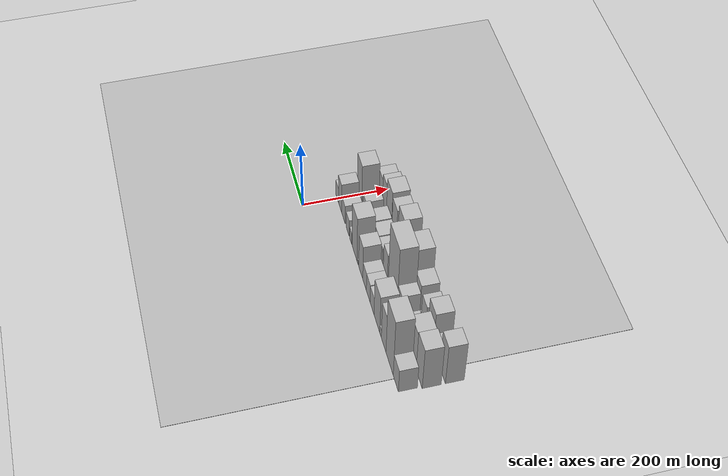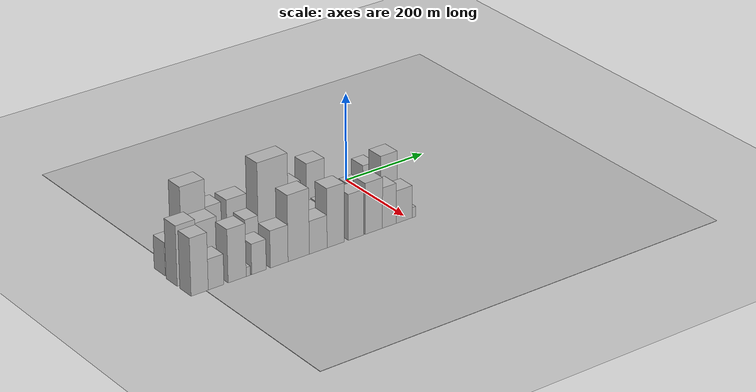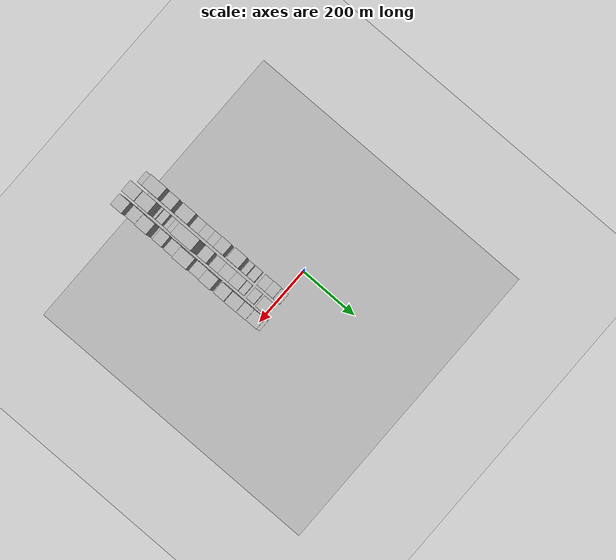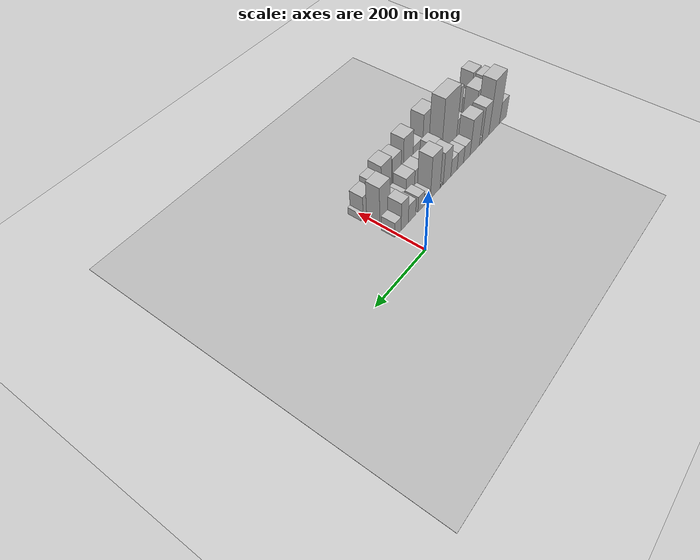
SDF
<sdf version="1.6">
 <world name="default">
  <include><name>ground_plane_1</name><uri>model://HANNAS_ground_plane</uri></include>
  <include>
   <name>ground_plane_2</name>
   <uri>model://HANNAS_ground_plane</uri>
   <pose>100 0 0  0 0 0</pose>
  </include>
  <model name="building_1">
   <static>1</static>
   <pose>100.0000 -512.0443 0 0.000000 0.000000 0.000000</pose>
   <link name="link">
    <pose>0 0 37.50 0 0 0</pose>
    <collision name="collision"><geometry><box><size>40.0000 39.9115 75.0000</size></box></geometry></collision>
    <visual name="visual">
     <cast_shadows>0</cast_shadows>
     <geometry><box><size>40.0000 39.9115 75.0000</size></box></geometry>
     <material>
      <script>
       <uri>model://HANNAS_wall/materials/scripts</uri>
       <uri>model://HANNAS_wall/materials/textures</uri>
       <name>vrc/HANNAS_wall</name>
      </script>
     </material>
    </visual>
   </link>
  </model>
  <model name="building_2">
   <static>1</static>
   <pose>100.0000 -462.9646 0 0.000000 0.000000 0.000000</pose>
   <link name="link">
    <pose>0 0 93.00 0 0 0</pose>
    <collision name="collision"><geometry><box><size>40.0000 58.2478 186.0000</size></box></geometry></collision>
    <visual name="visual">
     <cast_shadows>0</cast_shadows>
     <geometry><box><size>40.0000 58.2478 186.0000</size></box></geometry>
     <material>
      <script>
       <uri>model://HANNAS_wall/materials/scripts</uri>
       <uri>model://HANNAS_wall/materials/textures</uri>
       <name>vrc/HANNAS_wall</name>
      </script>
     </material>
    </visual>
   </link>
  </model>
  <model name="building_3">
   <static>1</static>
   <pose>100.0000 -414.9623 0 0.000000 0.000000 0.000000</pose>
   <link name="link">
    <pose>0 0 61.50 0 0 0</pose>
    <collision name="collision"><geometry><box><size>40.0000 37.7568 123.0000</size></box></geometry></collision>
    <visual name="visual">
     <cast_shadows>0</cast_shadows>
     <geometry><box><size>40.0000 37.7568 123.0000</size></box></geometry>
     <material>
      <script>
       <uri>model://HANNAS_wall/materials/scripts</uri>
       <uri>model://HANNAS_wall/materials/textures</uri>
       <name>vrc/HANNAS_wall</name>
      </script>
     </material>
    </visual>
   </link>
  </model>
  <model name="building_4">
   <static>1</static>
   <pose>100.0000 -389.6329 0 0.000000 0.000000 0.000000</pose>
   <link name="link">
    <pose>0 0 13.50 0 0 0</pose>
    <collision name="collision"><geometry><box><size>40.0000 12.9021 27.0000</size></box></geometry></collision>
    <visual name="visual">
     <cast_shadows>0</cast_shadows>
     <geometry><box><size>40.0000 12.9021 27.0000</size></box></geometry>
     <material>
      <script>
       <uri>model://HANNAS_wall/materials/scripts</uri>
       <uri>model://HANNAS_wall/materials/textures</uri>
       <name>vrc/HANNAS_wall</name>
      </script>
     </material>
    </visual>
   </link>
  </model>
  <model name="building_5">
   <static>1</static>
   <pose>100.0000 -359.2586 0 0.000000 0.000000 0.000000</pose>
   <link name="link">
    <pose>0 0 61.50 0 0 0</pose>
    <collision name="collision"><geometry><box><size>40.0000 47.8465 123.0000</size></box></geometry></collision>
    <visual name="visual">
     <cast_shadows>0</cast_shadows>
     <geometry><box><size>40.0000 47.8465 123.0000</size></box></geometry>
     <material>
      <script>
       <uri>model://HANNAS_wall/materials/scripts</uri>
       <uri>model://HANNAS_wall/materials/textures</uri>
       <name>vrc/HANNAS_wall</name>
      </script>
     </material>
    </visual>
   </link>
  </model>
  <model name="building_6">
   <static>1</static>
   <pose>100.0000 -318.5789 0 0.000000 0.000000 0.000000</pose>
   <link name="link">
    <pose>0 0 28.50 0 0 0</pose>
    <collision name="collision"><geometry><box><size>40.0000 33.5130 57.0000</size></box></geometry></collision>
    <visual name="visual">
     <cast_shadows>0</cast_shadows>
     <geometry><box><size>40.0000 33.5130 57.0000</size></box></geometry>
     <material>
      <script>
       <uri>model://HANNAS_wall/materials/scripts</uri>
       <uri>model://HANNAS_wall/materials/textures</uri>
       <name>vrc/HANNAS_wall</name>
      </script>
     </material>
    </visual>
   </link>
  </model>
  <model name="building_7">
   <static>1</static>
   <pose>100.0000 -285.7807 0 0.000000 0.000000 0.000000</pose>
   <link name="link">
    <pose>0 0 30.00 0 0 0</pose>
    <collision name="collision"><geometry><box><size>40.0000 32.0833 60.0000</size></box></geometry></collision>
    <visual name="visual">
     <cast_shadows>0</cast_shadows>
     <geometry><box><size>40.0000 32.0833 60.0000</size></box></geometry>
     <material>
      <script>
       <uri>model://HANNAS_wall/materials/scripts</uri>
       <uri>model://HANNAS_wall/materials/textures</uri>
       <name>vrc/HANNAS_wall</name>
      </script>
     </material>
    </visual>
   </link>
  </model>
  <model name="building_8">
   <static>1</static>
   <pose>100.0000 -254.2660 0 0.000000 0.000000 0.000000</pose>
   <link name="link">
    <pose>0 0 30.00 0 0 0</pose>
    <collision name="collision"><geometry><box><size>40.0000 30.9462 60.0000</size></box></geometry></collision>
    <visual name="visual">
     <cast_shadows>0</cast_shadows>
     <geometry><box><size>40.0000 30.9462 60.0000</size></box></geometry>
     <material>
      <script>
       <uri>model://HANNAS_wall/materials/scripts</uri>
       <uri>model://HANNAS_wall/materials/textures</uri>
       <name>vrc/HANNAS_wall</name>
      </script>
     </material>
    </visual>
   </link>
  </model>
  <model name="building_9">
   <static>1</static>
   <pose>100.0000 -220.7364 0 0.000000 0.000000 0.000000</pose>
   <link name="link">
    <pose>0 0 55.50 0 0 0</pose>
    <collision name="collision"><geometry><box><size>40.0000 36.1131 111.0000</size></box></geometry></collision>
    <visual name="visual">
     <cast_shadows>0</cast_shadows>
     <geometry><box><size>40.0000 36.1131 111.0000</size></box></geometry>
     <material>
      <script>
       <uri>model://HANNAS_wall/materials/scripts</uri>
       <uri>model://HANNAS_wall/materials/textures</uri>
       <name>vrc/HANNAS_wall</name>
      </script>
     </material>
    </visual>
   </link>
  </model>
  <model name="building_10">
   <static>1</static>
   <pose>100.0000 -194.1090 0 0.000000 0.000000 0.000000</pose>
   <link name="link">
    <pose>0 0 7.50 0 0 0</pose>
    <collision name="collision"><geometry><box><size>40.0000 7.1417 15.0000</size></box></geometry></collision>
    <visual name="visual">
     <cast_shadows>0</cast_shadows>
     <geometry><box><size>40.0000 7.1417 15.0000</size></box></geometry>
     <material>
      <script>
       <uri>model://HANNAS_wall/materials/scripts</uri>
       <uri>model://HANNAS_wall/materials/textures</uri>
       <name>vrc/HANNAS_wall</name>
      </script>
     </material>
    </visual>
   </link>
  </model>
  <model name="building_11">
   <static>1</static>
   <pose>100.0000 -165.2680 0 0.000000 0.000000 0.000000</pose>
   <link name="link">
    <pose>0 0 72.00 0 0 0</pose>
    <collision name="collision"><geometry><box><size>40.0000 44.5402 144.0000</size></box></geometry></collision>
    <visual name="visual">
     <cast_shadows>0</cast_shadows>
     <geometry><box><size>40.0000 44.5402 144.0000</size></box></geometry>
     <material>
      <script>
       <uri>model://HANNAS_wall/materials/scripts</uri>
       <uri>model://HANNAS_wall/materials/textures</uri>
       <name>vrc/HANNAS_wall</name>
      </script>
     </material>
    </visual>
   </link>
  </model>
  <model name="building_12">
   <static>1</static>
   <pose>100.0000 -128.9240 0 0.000000 0.000000 0.000000</pose>
   <link name="link">
    <pose>0 0 19.50 0 0 0</pose>
    <collision name="collision"><geometry><box><size>40.0000 20.1479 39.0000</size></box></geometry></collision>
    <visual name="visual">
     <cast_shadows>0</cast_shadows>
     <geometry><box><size>40.0000 20.1479 39.0000</size></box></geometry>
     <material>
      <script>
       <uri>model://HANNAS_wall/materials/scripts</uri>
       <uri>model://HANNAS_wall/materials/textures</uri>
       <name>vrc/HANNAS_wall</name>
      </script>
     </material>
    </visual>
   </link>
  </model>
  <model name="building_13">
   <static>1</static>
   <pose>100.0000 -101.1259 0 0.000000 0.000000 0.000000</pose>
   <link name="link">
    <pose>0 0 27.00 0 0 0</pose>
    <collision name="collision"><geometry><box><size>40.0000 27.4483 54.0000</size></box></geometry></collision>
    <visual name="visual">
     <cast_shadows>0</cast_shadows>
     <geometry><box><size>40.0000 27.4483 54.0000</size></box></geometry>
     <material>
      <script>
       <uri>model://HANNAS_wall/materials/scripts</uri>
       <uri>model://HANNAS_wall/materials/textures</uri>
       <name>vrc/HANNAS_wall</name>
      </script>
     </material>
    </visual>
   </link>
  </model>
  <model name="building_14">
   <static>1</static>
   <pose>100.0000 -61.3096 0 0.000000 0.000000 0.000000</pose>
   <link name="link">
    <pose>0 0 30.00 0 0 0</pose>
    <collision name="collision"><geometry><box><size>40.0000 32.1842 60.0000</size></box></geometry></collision>
    <visual name="visual">
     <cast_shadows>0</cast_shadows>
     <geometry><box><size>40.0000 32.1842 60.0000</size></box></geometry>
     <material>
      <script>
       <uri>model://HANNAS_wall/materials/scripts</uri>
       <uri>model://HANNAS_wall/materials/textures</uri>
       <name>vrc/HANNAS_wall</name>
      </script>
     </material>
    </visual>
   </link>
  </model>
  <model name="building_15">
   <static>1</static>
   <pose>100.0000 -29.9201 0 0.000000 0.000000 0.000000</pose>
   <link name="link">
    <pose>0 0 48.00 0 0 0</pose>
    <collision name="collision"><geometry><box><size>40.0000 30.5947 96.0000</size></box></geometry></collision>
    <visual name="visual">
     <cast_shadows>0</cast_shadows>
     <geometry><box><size>40.0000 30.5947 96.0000</size></box></geometry>
     <material>
      <script>
       <uri>model://HANNAS_wall/materials/scripts</uri>
       <uri>model://HANNAS_wall/materials/textures</uri>
       <name>vrc/HANNAS_wall</name>
      </script>
     </material>
    </visual>
   </link>
  </model>
  <model name="building_16">
   <static>1</static>
   <pose>100.0000 -1.5461 0 0.000000 0.000000 0.000000</pose>
   <link name="link">
    <pose>0 0 25.50 0 0 0</pose>
    <collision name="collision"><geometry><box><size>40.0000 26.1533 51.0000</size></box></geometry></collision>
    <visual name="visual">
     <cast_shadows>0</cast_shadows>
     <geometry><box><size>40.0000 26.1533 51.0000</size></box></geometry>
     <material>
      <script>
       <uri>model://HANNAS_wall/materials/scripts</uri>
       <uri>model://HANNAS_wall/materials/textures</uri>
       <name>vrc/HANNAS_wall</name>
      </script>
     </material>
    </visual>
   </link>
  </model>
  <model name="building_33">
   <static>1</static>
   <pose>149.0000 -513.2395 0 0.000000 0.000000 0.000000</pose>
   <link name="link">
    <pose>0 0 67.50 0 0 0</pose>
    <collision name="collision"><geometry><box><size>40.0000 45.5210 135.0000</size></box></geometry></collision>
    <visual name="visual">
     <cast_shadows>0</cast_shadows>
     <geometry><box><size>40.0000 45.5210 135.0000</size></box></geometry>
     <material>
      <script>
       <uri>model://HANNAS_wall/materials/scripts</uri>
       <uri>model://HANNAS_wall/materials/textures</uri>
       <name>vrc/HANNAS_wall</name>
      </script>
     </material>
    </visual>
   </link>
  </model>
  <model name="building_34">
   <static>1</static>
   <pose>149.0000 -465.4376 0 0.000000 0.000000 0.000000</pose>
   <link name="link">
    <pose>0 0 63.00 0 0 0</pose>
    <collision name="collision"><geometry><box><size>40.0000 50.0829 126.0000</size></box></geometry></collision>
    <visual name="visual">
     <cast_shadows>0</cast_shadows>
     <geometry><box><size>40.0000 50.0829 126.0000</size></box></geometry>
     <material>
      <script>
       <uri>model://HANNAS_wall/materials/scripts</uri>
       <uri>model://HANNAS_wall/materials/textures</uri>
       <name>vrc/HANNAS_wall</name>
      </script>
     </material>
    </visual>
   </link>
  </model>
  <model name="building_35">
   <static>1</static>
   <pose>149.0000 -436.0223 0 0.000000 0.000000 0.000000</pose>
   <link name="link">
    <pose>0 0 9.00 0 0 0</pose>
    <collision name="collision"><geometry><box><size>40.0000 8.7476 18.0000</size></box></geometry></collision>
    <visual name="visual">
     <cast_shadows>0</cast_shadows>
     <geometry><box><size>40.0000 8.7476 18.0000</size></box></geometry>
     <material>
      <script>
       <uri>model://HANNAS_wall/materials/scripts</uri>
       <uri>model://HANNAS_wall/materials/textures</uri>
       <name>vrc/HANNAS_wall</name>
      </script>
     </material>
    </visual>
   </link>
  </model>
  <model name="building_36">
   <static>1</static>
   <pose>149.0000 -413.1563 0 0.000000 0.000000 0.000000</pose>
   <link name="link">
    <pose>0 0 22.50 0 0 0</pose>
    <collision name="collision"><geometry><box><size>40.0000 22.9843 45.0000</size></box></geometry></collision>
    <visual name="visual">
     <cast_shadows>0</cast_shadows>
     <geometry><box><size>40.0000 22.9843 45.0000</size></box></geometry>
     <material>
      <script>
       <uri>model://HANNAS_wall/materials/scripts</uri>
       <uri>model://HANNAS_wall/materials/textures</uri>
       <name>vrc/HANNAS_wall</name>
      </script>
     </material>
    </visual>
   </link>
  </model>
  <model name="building_37">
   <static>1</static>
   <pose>149.0000 -384.3361 0 0.000000 0.000000 0.000000</pose>
   <link name="link">
    <pose>0 0 19.50 0 0 0</pose>
    <collision name="collision"><geometry><box><size>40.0000 22.6561 39.0000</size></box></geometry></collision>
    <visual name="visual">
     <cast_shadows>0</cast_shadows>
     <geometry><box><size>40.0000 22.6561 39.0000</size></box></geometry>
     <material>
      <script>
       <uri>model://HANNAS_wall/materials/scripts</uri>
       <uri>model://HANNAS_wall/materials/textures</uri>
       <name>vrc/HANNAS_wall</name>
      </script>
     </material>
    </visual>
   </link>
  </model>
  <model name="building_38">
   <static>1</static>
   <pose>149.0000 -357.0428 0 0.000000 0.000000 0.000000</pose>
   <link name="link">
    <pose>0 0 48.00 0 0 0</pose>
    <collision name="collision"><geometry><box><size>40.0000 31.9304 96.0000</size></box></geometry></collision>
    <visual name="visual">
     <cast_shadows>0</cast_shadows>
     <geometry><box><size>40.0000 31.9304 96.0000</size></box></geometry>
     <material>
      <script>
       <uri>model://HANNAS_wall/materials/scripts</uri>
       <uri>model://HANNAS_wall/materials/textures</uri>
       <name>vrc/HANNAS_wall</name>
      </script>
     </material>
    </visual>
   </link>
  </model>
  <model name="building_39">
   <static>1</static>
   <pose>149.0000 -304.5388 0 0.000000 0.000000 0.000000</pose>
   <link name="link">
    <pose>0 0 106.50 0 0 0</pose>
    <collision name="collision"><geometry><box><size>40.0000 73.0776 213.0000</size></box></geometry></collision>
    <visual name="visual">
     <cast_shadows>0</cast_shadows>
     <geometry><box><size>40.0000 73.0776 213.0000</size></box></geometry>
     <material>
      <script>
       <uri>model://HANNAS_wall/materials/scripts</uri>
       <uri>model://HANNAS_wall/materials/textures</uri>
       <name>vrc/HANNAS_wall</name>
      </script>
     </material>
    </visual>
   </link>
  </model>
  <model name="building_40">
   <static>1</static>
   <pose>149.0000 -242.8486 0 0.000000 0.000000 0.000000</pose>
   <link name="link">
    <pose>0 0 46.50 0 0 0</pose>
    <collision name="collision"><geometry><box><size>40.0000 34.3028 93.0000</size></box></geometry></collision>
    <visual name="visual">
     <cast_shadows>0</cast_shadows>
     <geometry><box><size>40.0000 34.3028 93.0000</size></box></geometry>
     <material>
      <script>
       <uri>model://HANNAS_wall/materials/scripts</uri>
       <uri>model://HANNAS_wall/materials/textures</uri>
       <name>vrc/HANNAS_wall</name>
      </script>
     </material>
    </visual>
   </link>
  </model>
  <model name="building_41">
   <static>1</static>
   <pose>149.0000 -200.7649 0 0.000000 0.000000 0.000000</pose>
   <link name="link">
    <pose>0 0 33.00 0 0 0</pose>
    <collision name="collision"><geometry><box><size>40.0000 33.8648 66.0000</size></box></geometry></collision>
    <visual name="visual">
     <cast_shadows>0</cast_shadows>
     <geometry><box><size>40.0000 33.8648 66.0000</size></box></geometry>
     <material>
      <script>
       <uri>model://HANNAS_wall/materials/scripts</uri>
       <uri>model://HANNAS_wall/materials/textures</uri>
       <name>vrc/HANNAS_wall</name>
      </script>
     </material>
    </visual>
   </link>
  </model>
  <model name="building_42">
   <static>1</static>
   <pose>149.0000 -163.7978 0 0.000000 0.000000 0.000000</pose>
   <link name="link">
    <pose>0 0 34.50 0 0 0</pose>
    <collision name="collision"><geometry><box><size>40.0000 40.0694 69.0000</size></box></geometry></collision>
    <visual name="visual">
     <cast_shadows>0</cast_shadows>
     <geometry><box><size>40.0000 40.0694 69.0000</size></box></geometry>
     <material>
      <script>
       <uri>model://HANNAS_wall/materials/scripts</uri>
       <uri>model://HANNAS_wall/materials/textures</uri>
       <name>vrc/HANNAS_wall</name>
      </script>
     </material>
    </visual>
   </link>
  </model>
  <model name="building_43">
   <static>1</static>
   <pose>149.0000 -125.0064 0 0.000000 0.000000 0.000000</pose>
   <link name="link">
    <pose>0 0 36.00 0 0 0</pose>
    <collision name="collision"><geometry><box><size>40.0000 37.5133 72.0000</size></box></geometry></collision>
    <visual name="visual">
     <cast_shadows>0</cast_shadows>
     <geometry><box><size>40.0000 37.5133 72.0000</size></box></geometry>
     <material>
      <script>
       <uri>model://HANNAS_wall/materials/scripts</uri>
       <uri>model://HANNAS_wall/materials/textures</uri>
       <name>vrc/HANNAS_wall</name>
      </script>
     </material>
    </visual>
   </link>
  </model>
  <model name="building_44">
   <static>1</static>
   <pose>149.0000 -95.7182 0 0.000000 0.000000 0.000000</pose>
   <link name="link">
    <pose>0 0 18.00 0 0 0</pose>
    <collision name="collision"><geometry><box><size>40.0000 21.0632 36.0000</size></box></geometry></collision>
    <visual name="visual">
     <cast_shadows>0</cast_shadows>
     <geometry><box><size>40.0000 21.0632 36.0000</size></box></geometry>
     <material>
      <script>
       <uri>model://HANNAS_wall/materials/scripts</uri>
       <uri>model://HANNAS_wall/materials/textures</uri>
       <name>vrc/HANNAS_wall</name>
      </script>
     </material>
    </visual>
   </link>
  </model>
  <model name="building_45">
   <static>1</static>
   <pose>149.0000 -60.5507 0 0.000000 0.000000 0.000000</pose>
   <link name="link">
    <pose>0 0 28.50 0 0 0</pose>
    <collision name="collision"><geometry><box><size>40.0000 29.2717 57.0000</size></box></geometry></collision>
    <visual name="visual">
     <cast_shadows>0</cast_shadows>
     <geometry><box><size>40.0000 29.2717 57.0000</size></box></geometry>
     <material>
      <script>
       <uri>model://HANNAS_wall/materials/scripts</uri>
       <uri>model://HANNAS_wall/materials/textures</uri>
       <name>vrc/HANNAS_wall</name>
      </script>
     </material>
    </visual>
   </link>
  </model>
  <model name="building_46">
   <static>1</static>
   <pose>149.0000 -15.8143 0 0.000000 0.000000 0.000000</pose>
   <link name="link">
    <pose>0 0 67.50 0 0 0</pose>
    <collision name="collision"><geometry><box><size>40.0000 42.2011 135.0000</size></box></geometry></collision>
    <visual name="visual">
     <cast_shadows>0</cast_shadows>
     <geometry><box><size>40.0000 42.2011 135.0000</size></box></geometry>
     <material>
      <script>
       <uri>model://HANNAS_wall/materials/scripts</uri>
       <uri>model://HANNAS_wall/materials/textures</uri>
       <name>vrc/HANNAS_wall</name>
      </script>
     </material>
    </visual>
   </link>
  </model>
  <model name="building_62">
   <static>1</static>
   <pose>198.0000 -515.7371 0 0.000000 0.000000 0.000000</pose>
   <link name="link">
    <pose>0 0 64.50 0 0 0</pose>
    <collision name="collision"><geometry><box><size>40.0000 40.5257 129.0000</size></box></geometry></collision>
    <visual name="visual">
     <cast_shadows>0</cast_shadows>
     <geometry><box><size>40.0000 40.5257 129.0000</size></box></geometry>
     <material>
      <script>
       <uri>model://HANNAS_wall/materials/scripts</uri>
       <uri>model://HANNAS_wall/materials/textures</uri>
       <name>vrc/HANNAS_wall</name>
      </script>
     </material>
    </visual>
   </link>
  </model>
  <model name="building_63">
   <static>1</static>
   <pose>198.0000 -476.8887 0 0.000000 0.000000 0.000000</pose>
   <link name="link">
    <pose>0 0 34.50 0 0 0</pose>
    <collision name="collision"><geometry><box><size>40.0000 37.1712 69.0000</size></box></geometry></collision>
    <visual name="visual">
     <cast_shadows>0</cast_shadows>
     <geometry><box><size>40.0000 37.1712 69.0000</size></box></geometry>
     <material>
      <script>
       <uri>model://HANNAS_wall/materials/scripts</uri>
       <uri>model://HANNAS_wall/materials/textures</uri>
       <name>vrc/HANNAS_wall</name>
      </script>
     </material>
    </visual>
   </link>
  </model>
  <model name="building_64">
   <static>1</static>
   <pose>198.0000 -426.7132 0 0.000000 0.000000 0.000000</pose>
   <link name="link">
    <pose>0 0 60.00 0 0 0</pose>
    <collision name="collision"><geometry><box><size>40.0000 43.1799 120.0000</size></box></geometry></collision>
    <visual name="visual">
     <cast_shadows>0</cast_shadows>
     <geometry><box><size>40.0000 43.1799 120.0000</size></box></geometry>
     <material>
      <script>
       <uri>model://HANNAS_wall/materials/scripts</uri>
       <uri>model://HANNAS_wall/materials/textures</uri>
       <name>vrc/HANNAS_wall</name>
      </script>
     </material>
    </visual>
   </link>
  </model>
  <model name="building_65">
   <static>1</static>
   <pose>198.0000 -400.0212 0 0.000000 0.000000 0.000000</pose>
   <link name="link">
    <pose>0 0 10.50 0 0 0</pose>
    <collision name="collision"><geometry><box><size>40.0000 10.2041 21.0000</size></box></geometry></collision>
    <visual name="visual">
     <cast_shadows>0</cast_shadows>
     <geometry><box><size>40.0000 10.2041 21.0000</size></box></geometry>
     <material>
      <script>
       <uri>model://HANNAS_wall/materials/scripts</uri>
       <uri>model://HANNAS_wall/materials/textures</uri>
       <name>vrc/HANNAS_wall</name>
      </script>
     </material>
    </visual>
   </link>
  </model>
  <model name="building_66">
   <static>1</static>
   <pose>198.0000 -374.3731 0 0.000000 0.000000 0.000000</pose>
   <link name="link">
    <pose>0 0 34.50 0 0 0</pose>
    <collision name="collision"><geometry><box><size>40.0000 35.0922 69.0000</size></box></geometry></collision>
    <visual name="visual">
     <cast_shadows>0</cast_shadows>
     <geometry><box><size>40.0000 35.0922 69.0000</size></box></geometry>
     <material>
      <script>
       <uri>model://HANNAS_wall/materials/scripts</uri>
       <uri>model://HANNAS_wall/materials/textures</uri>
       <name>vrc/HANNAS_wall</name>
      </script>
     </material>
    </visual>
   </link>
  </model>
  <model name="building_67">
   <static>1</static>
   <pose>198.0000 -325.3395 0 0.000000 0.000000 0.000000</pose>
   <link name="link">
    <pose>0 0 42.00 0 0 0</pose>
    <collision name="collision"><geometry><box><size>40.0000 42.9750 84.0000</size></box></geometry></collision>
    <visual name="visual">
     <cast_shadows>0</cast_shadows>
     <geometry><box><size>40.0000 42.9750 84.0000</size></box></geometry>
     <material>
      <script>
       <uri>model://HANNAS_wall/materials/scripts</uri>
       <uri>model://HANNAS_wall/materials/textures</uri>
       <name>vrc/HANNAS_wall</name>
      </script>
     </material>
    </visual>
   </link>
  </model>
  <model name="building_68">
   <static>1</static>
   <pose>198.0000 -277.7377 0 0.000000 0.000000 0.000000</pose>
   <link name="link">
    <pose>0 0 75.00 0 0 0</pose>
    <collision name="collision"><geometry><box><size>40.0000 52.2286 150.0000</size></box></geometry></collision>
    <visual name="visual">
     <cast_shadows>0</cast_shadows>
     <geometry><box><size>40.0000 52.2286 150.0000</size></box></geometry>
     <material>
      <script>
       <uri>model://HANNAS_wall/materials/scripts</uri>
       <uri>model://HANNAS_wall/materials/textures</uri>
       <name>vrc/HANNAS_wall</name>
      </script>
     </material>
    </visual>
   </link>
  </model>
  <model name="building_69">
   <static>1</static>
   <pose>198.0000 -229.6370 0 0.000000 0.000000 0.000000</pose>
   <link name="link">
    <pose>0 0 37.50 0 0 0</pose>
    <collision name="collision"><geometry><box><size>40.0000 43.9727 75.0000</size></box></geometry></collision>
    <visual name="visual">
     <cast_shadows>0</cast_shadows>
     <geometry><box><size>40.0000 43.9727 75.0000</size></box></geometry>
     <material>
      <script>
       <uri>model://HANNAS_wall/materials/scripts</uri>
       <uri>model://HANNAS_wall/materials/textures</uri>
       <name>vrc/HANNAS_wall</name>
      </script>
     </material>
    </visual>
   </link>
  </model>
  <model name="building_70">
   <static>1</static>
   <pose>198.0000 -186.1103 0 0.000000 0.000000 0.000000</pose>
   <link name="link">
    <pose>0 0 67.50 0 0 0</pose>
    <collision name="collision"><geometry><box><size>40.0000 43.0807 135.0000</size></box></geometry></collision>
    <visual name="visual">
     <cast_shadows>0</cast_shadows>
     <geometry><box><size>40.0000 43.0807 135.0000</size></box></geometry>
     <material>
      <script>
       <uri>model://HANNAS_wall/materials/scripts</uri>
       <uri>model://HANNAS_wall/materials/textures</uri>
       <name>vrc/HANNAS_wall</name>
      </script>
     </material>
    </visual>
   </link>
  </model>
  <model name="building_71">
   <static>1</static>
   <pose>198.0000 -135.0684 0 0.000000 0.000000 0.000000</pose>
   <link name="link">
    <pose>0 0 52.50 0 0 0</pose>
    <collision name="collision"><geometry><box><size>40.0000 39.0031 105.0000</size></box></geometry></collision>
    <visual name="visual">
     <cast_shadows>0</cast_shadows>
     <geometry><box><size>40.0000 39.0031 105.0000</size></box></geometry>
     <material>
      <script>
       <uri>model://HANNAS_wall/materials/scripts</uri>
       <uri>model://HANNAS_wall/materials/textures</uri>
       <name>vrc/HANNAS_wall</name>
      </script>
     </material>
    </visual>
   </link>
  </model>
  <model name="building_72">
   <static>1</static>
   <pose>198.0000 -90.5936 0 0.000000 0.000000 0.000000</pose>
   <link name="link">
    <pose>0 0 58.50 0 0 0</pose>
    <collision name="collision"><geometry><box><size>40.0000 43.9464 117.0000</size></box></geometry></collision>
    <visual name="visual">
     <cast_shadows>0</cast_shadows>
     <geometry><box><size>40.0000 43.9464 117.0000</size></box></geometry>
     <material>
      <script>
       <uri>model://HANNAS_wall/materials/scripts</uri>
       <uri>model://HANNAS_wall/materials/textures</uri>
       <name>vrc/HANNAS_wall</name>
      </script>
     </material>
    </visual>
   </link>
  </model>
  <model name="building_73">
   <static>1</static>
   <pose>198.0000 -51.1951 0 0.000000 0.000000 0.000000</pose>
   <link name="link">
    <pose>0 0 46.50 0 0 0</pose>
    <collision name="collision"><geometry><box><size>40.0000 34.8508 93.0000</size></box></geometry></collision>
    <visual name="visual">
     <cast_shadows>0</cast_shadows>
     <geometry><box><size>40.0000 34.8508 93.0000</size></box></geometry>
     <material>
      <script>
       <uri>model://HANNAS_wall/materials/scripts</uri>
       <uri>model://HANNAS_wall/materials/textures</uri>
       <name>vrc/HANNAS_wall</name>
      </script>
     </material>
    </visual>
   </link>
  </model>
  <model name="building_74">
   <static>1</static>
   <pose>198.0000 -13.3068 0 0.000000 0.000000 0.000000</pose>
   <link name="link">
    <pose>0 0 37.50 0 0 0</pose>
    <collision name="collision"><geometry><box><size>40.0000 40.9258 75.0000</size></box></geometry></collision>
    <visual name="visual">
     <cast_shadows>0</cast_shadows>
     <geometry><box><size>40.0000 40.9258 75.0000</size></box></geometry>
     <material>
      <script>
       <uri>model://HANNAS_wall/materials/scripts</uri>
       <uri>model://HANNAS_wall/materials/textures</uri>
       <name>vrc/HANNAS_wall</name>
      </script>
     </material>
    </visual>
   </link>
  </model>
  <model name="building_75">
   <static>1</static>
   <pose>198.0000 12.0767 0 0.000000 0.000000 0.000000</pose>
   <link name="link">
    <pose>0 0 12.00 0 0 0</pose>
    <collision name="collision"><geometry><box><size>40.0000 9.8411 24.0000</size></box></geometry></collision>
    <visual name="visual">
     <cast_shadows>0</cast_shadows>
     <geometry><box><size>40.0000 9.8411 24.0000</size></box></geometry>
     <material>
      <script>
       <uri>model://HANNAS_wall/materials/scripts</uri>
       <uri>model://HANNAS_wall/materials/textures</uri>
       <name>vrc/HANNAS_wall</name>
      </script>
     </material>
    </visual>
   </link>
  </model>
 </world>
</sdf>
